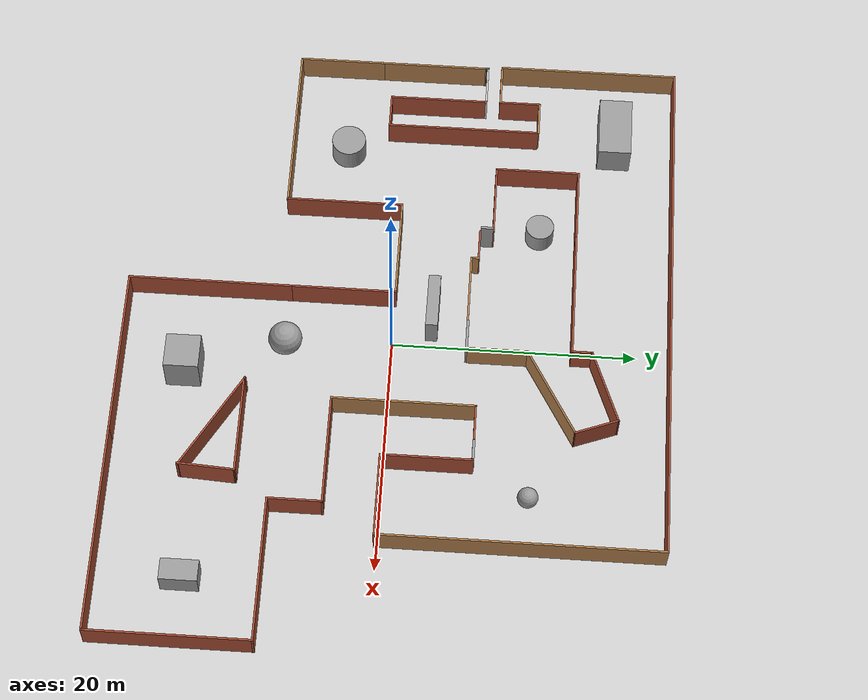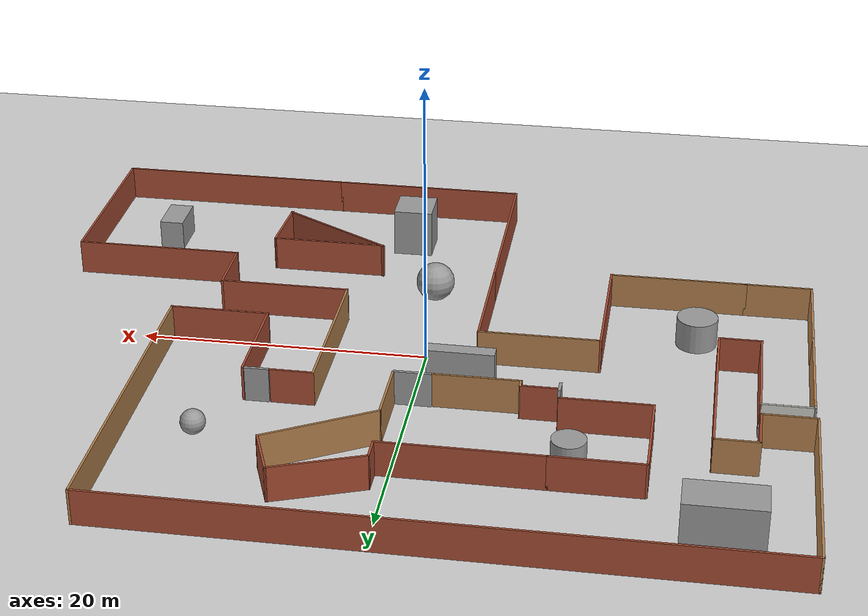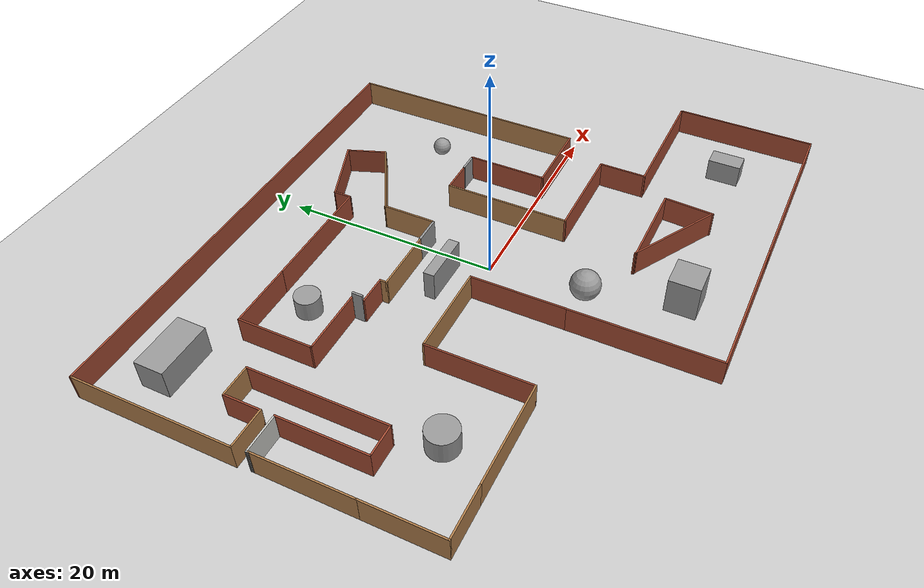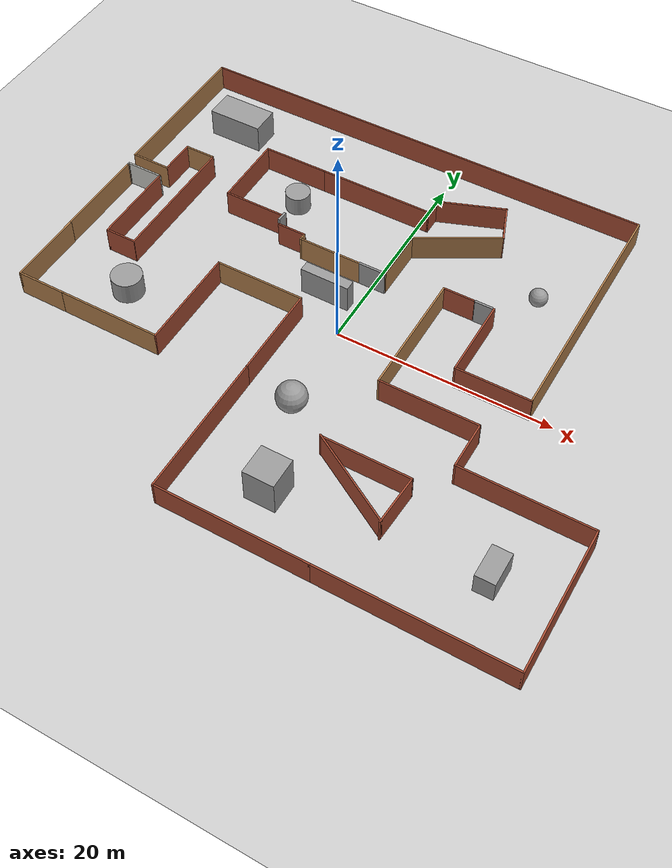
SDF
<sdf version="1.7">
 <world name="default">
  <light name="sun" type="directional">
   <pose>0 0 10 0 -0 0</pose>
   <diffuse>0.8 0.8 0.8 1</diffuse>
   <specular>0.2 0.2 0.2 1</specular>
   <attenuation>
    <range>1000</range>
    <constant>0.9</constant>
    <linear>0.01</linear>
    <quadratic>0.001</quadratic>
   </attenuation>
   <direction>-0.5 0.1 -0.9</direction>
   <spot><inner_angle>0</inner_angle><outer_angle>0</outer_angle><falloff>0</falloff></spot>
  </light>
  <model name="ground_plane">
   <static>1</static>
   <link name="link">
    <collision name="collision">
     <geometry><plane><normal>0 0 1</normal><size>100 100</size></plane></geometry>
     <surface>
      <contact><collide_bitmask>65535</collide_bitmask></contact>
      <friction><ode><mu>100</mu><mu2>50</mu2></ode></friction>
     </surface>
    </collision>
    <visual name="visual">
     <cast_shadows>0</cast_shadows>
     <geometry><plane><normal>0 0 1</normal><size>100 100</size></plane></geometry>
     <material>
      <script><uri>file://media/materials/scripts/gazebo.material</uri><name>Gazebo/Grey</name></script>
     </material>
    </visual>
   </link>
  </model>
  <gravity>0 0 -9.8</gravity>
  <magnetic_field>6e-06 2.3e-05 -4.2e-05</magnetic_field>
  <atmosphere type="adiabatic"/>
  <physics type="ode">
   <max_step_size>0.001</max_step_size>
   <real_time_factor>1</real_time_factor>
   <real_time_update_rate>1000</real_time_update_rate>
  </physics>
  <scene><ambient>0.4 0.4 0.4 1</ambient><background>0.7 0.7 0.7 1</background><shadows>1</shadows></scene>
  <spherical_coordinates>
   <surface_model>EARTH_WGS84</surface_model>
   <latitude_deg>0</latitude_deg>
   <longitude_deg>0</longitude_deg>
   <elevation>0</elevation>
   <heading_deg>0</heading_deg>
  </spherical_coordinates>
  <model name="world_Car">
   <pose>0.45584 0.39541 0 0 -0 0</pose>
   <link name="Door_1">
    <collision name="Door_1_Collision">
     <geometry><box><size>1.664 0.2 2.5</size></box></geometry>
     <pose>0 0 1.25 0 -0 0</pose>
    </collision>
    <visual name="Door_1_Visual">
     <pose>0 0 1.25 0 -0 0</pose>
     <geometry><box><size>1.664 0.2 2.5</size></box></geometry>
     <material>
      <script><uri>file://media/materials/scripts/gazebo.material</uri><name>Gazebo/Grey</name></script>
     </material>
    </visual>
    <pose>9.70506 6.77905 0 0 -0 0</pose>
   </link>
   <link name="Door_2">
    <collision name="Door_2_Collision">
     <geometry><box><size>2.582 0.2 2.5</size></box></geometry>
     <pose>0 0 1.25 0 -0 0</pose>
    </collision>
    <visual name="Door_2_Visual">
     <pose>0 0 1.25 0 -0 0</pose>
     <geometry><box><size>2.582 0.2 2.5</size></box></geometry>
     <material>
      <script><uri>file://media/materials/scripts/gazebo.material</uri><name>Gazebo/Grey</name></script>
     </material>
    </visual>
    <pose>-0.559145 5.75033 0 0 -0 0</pose>
   </link>
   <link name="Wall_10">
    <collision name="Wall_10_Collision">
     <geometry><box><size>15 0.15 2.5</size></box></geometry>
     <pose>0 0 1.25 0 -0 0</pose>
    </collision>
    <visual name="Wall_10_Visual">
     <pose>0 0 1.25 0 -0 0</pose>
     <geometry><box><size>15 0.15 2.5</size></box></geometry>
     <material>
      <script><uri>file://media/materials/scripts/gazebo.material</uri><name>Gazebo/Wood</name></script>
      <ambient>1 1 1 1</ambient>
     </material>
     <meta><layer>0</layer></meta>
    </visual>
    <pose>-26.8438 14.8473 0 0 -0 -1.5708</pose>
   </link>
   <link name="Wall_101">
    <collision name="Wall_101_Collision">
     <geometry><box><size>8.25 0.15 2.5</size></box></geometry>
     <pose>0 0 1.25 0 -0 0</pose>
    </collision>
    <visual name="Wall_101_Visual">
     <pose>0 0 1.25 0 -0 0</pose>
     <geometry><box><size>8.25 0.15 2.5</size></box></geometry>
     <material>
      <script><uri>file://media/materials/scripts/gazebo.material</uri><name>Gazebo/Wood</name></script>
      <ambient>1 1 1 1</ambient>
     </material>
     <meta><layer>0</layer></meta>
    </visual>
    <pose>4.23205 12.7345 0 0 -0 -2.61799</pose>
   </link>
   <link name="Wall_103">
    <collision name="Wall_103_Collision">
     <geometry><box><size>5 0.15 2.5</size></box></geometry>
     <pose>0 0 1.25 0 -0 0</pose>
    </collision>
    <visual name="Wall_103_Visual">
     <pose>0 0 1.25 0 -0 0</pose>
     <geometry><box><size>5 0.15 2.5</size></box></geometry>
     <material>
      <script><uri>file://media/materials/scripts/gazebo.material</uri><name>Gazebo/Wood</name></script>
      <ambient>1 1 1 1</ambient>
     </material>
     <meta><layer>0</layer></meta>
    </visual>
    <pose>0.724642 8.28455 0 0 -0 -1.5708</pose>
   </link>
   <link name="Wall_105">
    <collision name="Wall_105_Collision">
     <geometry><box><size>6 0.15 2.5</size></box></geometry>
     <pose>0 0 1.25 0 -0 0</pose>
    </collision>
    <visual name="Wall_105_Visual">
     <pose>0 0 1.25 0 -0 0</pose>
     <geometry><box><size>6 0.15 2.5</size></box></geometry>
     <material>
      <script><uri>file://media/materials/scripts/gazebo.material</uri><name>Gazebo/Wood</name></script>
      <ambient>1 1 1 1</ambient>
     </material>
     <meta><layer>0</layer></meta>
    </visual>
    <pose>-4.8152 5.7206 0 0 -0 3.14159</pose>
   </link>
   <link name="Wall_106">
    <collision name="Wall_106_Collision">
     <geometry><box><size>0.75 0.15 2.5</size></box></geometry>
     <pose>0 0 1.25 0 -0 0</pose>
    </collision>
    <visual name="Wall_106_Visual">
     <pose>0 0 1.25 0 -0 0</pose>
     <geometry><box><size>0.75 0.15 2.5</size></box></geometry>
     <material>
      <script><uri>file://media/materials/scripts/gazebo.material</uri><name>Gazebo/Wood</name></script>
      <ambient>1 1 1 1</ambient>
     </material>
     <meta><layer>0</layer></meta>
    </visual>
    <pose>-7.7402 6.0206 0 0 -0 1.5708</pose>
   </link>
   <link name="Wall_107">
    <collision name="Wall_107_Collision">
     <geometry><box><size>2.76255 0.15 2.5</size></box></geometry>
     <pose>0 0 1.25 0 -0 0</pose>
    </collision>
    <visual name="Wall_107_Visual">
     <pose>0 0 1.25 0 -0 0</pose>
     <geometry><box><size>2.76255 0.15 2.5</size></box></geometry>
     <material>
      <script><uri>file://media/materials/scripts/gazebo.material</uri><name>Gazebo/Bricks</name></script>
      <ambient>1 1 1 1</ambient>
     </material>
     <meta><layer>0</layer></meta>
    </visual>
    <pose>-9.04647 6.32244 0 0 -0 3.14019</pose>
   </link>
   <link name="Wall_113">
    <collision name="Wall_113_Collision">
     <geometry><box><size>6.25 0.15 2.5</size></box></geometry>
     <pose>0 0 1.25 0 -0 0</pose>
    </collision>
    <visual name="Wall_113_Visual">
     <pose>0 0 1.25 0 -0 0</pose>
     <geometry><box><size>6.25 0.15 2.5</size></box></geometry>
     <material>
      <script><uri>file://media/materials/scripts/gazebo.material</uri><name>Gazebo/Bricks</name></script>
      <ambient>1 1 1 1</ambient>
     </material>
     <meta><layer>0</layer></meta>
    </visual>
    <pose>-13.4438 7.42225 0 0 -0 0</pose>
   </link>
   <link name="Wall_116">
    <collision name="Wall_116_Collision">
     <geometry><box><size>3.75 0.15 2.5</size></box></geometry>
     <pose>0 0 1.25 0 -0 0</pose>
    </collision>
    <visual name="Wall_116_Visual">
     <pose>0 0 1.25 0 -0 0</pose>
     <geometry><box><size>3.75 0.15 2.5</size></box></geometry>
     <material>
      <script><uri>file://media/materials/scripts/gazebo.material</uri><name>Gazebo/Wood</name></script>
      <ambient>1 1 1 1</ambient>
     </material>
     <meta><layer>0</layer></meta>
    </visual>
    <pose>-25.0438 7.42225 0 0 -0 0</pose>
   </link>
   <link name="Wall_117">
    <collision name="Wall_117_Collision">
     <geometry><box><size>3.5 0.15 2.5</size></box></geometry>
     <pose>0 0 1.25 0 -0 0</pose>
    </collision>
    <visual name="Wall_117_Visual">
     <pose>0 0 1.25 0 -0 0</pose>
     <geometry><box><size>3.5 0.15 2.5</size></box></geometry>
     <material>
      <script><uri>file://media/materials/scripts/gazebo.material</uri><name>Gazebo/Bricks</name></script>
      <ambient>1 1 1 1</ambient>
     </material>
     <meta><layer>0</layer></meta>
    </visual>
    <pose>-23.2438 9.09725 0 0 -0 1.5708</pose>
   </link>
   <link name="Wall_118">
    <collision name="Wall_118_Collision">
     <geometry><box><size>3 0.15 2.5</size></box></geometry>
     <pose>0 0 1.25 0 -0 0</pose>
    </collision>
    <visual name="Wall_118_Visual">
     <pose>0 0 1.25 0 -0 0</pose>
     <geometry><box><size>3 0.15 2.5</size></box></geometry>
     <material>
      <script><uri>file://media/materials/scripts/gazebo.material</uri><name>Gazebo/Wood</name></script>
      <ambient>1 1 1 1</ambient>
     </material>
     <meta><layer>0</layer></meta>
    </visual>
    <pose>-21.8188 10.7723 0 0 -0 0</pose>
   </link>
   <link name="Wall_12">
    <collision name="Wall_12_Collision">
     <geometry><box><size>7.04626 0.15 2.5</size></box></geometry>
     <pose>0 0 1.25 0 -0 0</pose>
    </collision>
    <visual name="Wall_12_Visual">
     <pose>0 0 1.25 0 -0 0</pose>
     <geometry><box><size>7.04626 0.15 2.5</size></box></geometry>
     <material>
      <script><uri>file://media/materials/scripts/gazebo.material</uri><name>Gazebo/Bricks</name></script>
      <ambient>1 1 1 1</ambient>
     </material>
     <meta><layer>0</layer></meta>
    </visual>
    <pose>-16.4938 10.8704 0 0 -0 1.5708</pose>
   </link>
   <link name="Wall_123">
    <collision name="Wall_123_Collision">
     <geometry><box><size>3.6035 0.15 2.5</size></box></geometry>
     <pose>0 0 1.25 0 -0 0</pose>
    </collision>
    <visual name="Wall_123_Visual">
     <pose>0 0 1.25 0 -0 0</pose>
     <geometry><box><size>3.6035 0.15 2.5</size></box></geometry>
     <material>
      <script><uri>file://media/materials/scripts/gazebo.material</uri><name>Gazebo/CeilingTiled</name></script>
      <ambient>1 1 1 1</ambient>
     </material>
     <meta><layer>0</layer></meta>
    </visual>
    <pose>-24.9424 6.19868 0 0 -0 3.14159</pose>
   </link>
   <link name="Wall_124">
    <collision name="Wall_124_Collision">
     <geometry><box><size>0.321428 0.15 2.5</size></box></geometry>
     <pose>0 0 1.25 0 -0 0</pose>
    </collision>
    <visual name="Wall_124_Visual">
     <pose>0 0 1.25 0 -0 0</pose>
     <geometry><box><size>0.321428 0.15 2.5</size></box></geometry>
     <material>
      <script><uri>file://media/materials/scripts/gazebo.material</uri><name>Gazebo/Grey</name></script>
      <ambient>1 1 1 1</ambient>
     </material>
     <meta><layer>0</layer></meta>
    </visual>
    <pose>-26.6627 6.11322 0 0 -0 -1.49508</pose>
   </link>
   <link name="Wall_125">
    <collision name="Wall_125_Collision">
     <geometry><box><size>0.15 0.15 2.5</size></box></geometry>
     <pose>0 0 1.25 0 -0 0</pose>
    </collision>
    <visual name="Wall_125_Visual">
     <pose>0 0 1.25 0 -0 0</pose>
     <geometry><box><size>0.15 0.15 2.5</size></box></geometry>
     <material>
      <script><uri>file://media/materials/scripts/gazebo.material</uri><name>Gazebo/Grey</name></script>
      <ambient>1 1 1 1</ambient>
     </material>
     <meta><layer>0</layer></meta>
    </visual>
    <pose>-26.6562 6.02775 0 0 -0 0</pose>
   </link>
   <link name="Wall_127">
    <collision name="Wall_127_Collision">
     <geometry><box><size>8.25 0.15 2.5</size></box></geometry>
     <pose>0 0 1.25 0 -0 0</pose>
    </collision>
    <visual name="Wall_127_Visual">
     <pose>0 0 1.25 0 -0 0</pose>
     <geometry><box><size>8.25 0.15 2.5</size></box></geometry>
     <material>
      <script><uri>file://media/materials/scripts/gazebo.material</uri><name>Gazebo/Bricks</name></script>
      <ambient>1 1 1 1</ambient>
     </material>
     <meta><layer>0</layer></meta>
    </visual>
    <pose>-23.2157 2.14868 0 0 -0 -1.5708</pose>
   </link>
   <link name="Wall_128">
    <collision name="Wall_128_Collision">
     <geometry><box><size>2.967 0.15 2.5</size></box></geometry>
     <pose>0 0 1.25 0 -0 0</pose>
    </collision>
    <visual name="Wall_128_Visual">
     <pose>0 0 1.25 0 -0 0</pose>
     <geometry><box><size>2.967 0.15 2.5</size></box></geometry>
     <material>
      <script><uri>file://media/materials/scripts/gazebo.material</uri><name>Gazebo/Bricks</name></script>
      <ambient>1 1 1 1</ambient>
     </material>
     <meta><layer>0</layer></meta>
    </visual>
    <pose>-21.8072 -1.90132 0 0 -0 0</pose>
   </link>
   <link name="Wall_129">
    <collision name="Wall_129_Collision">
     <geometry><box><size>12.75 0.15 2.5</size></box></geometry>
     <pose>0 0 1.25 0 -0 0</pose>
    </collision>
    <visual name="Wall_129_Visual">
     <pose>0 0 1.25 0 -0 0</pose>
     <geometry><box><size>12.75 0.15 2.5</size></box></geometry>
     <material>
      <script><uri>file://media/materials/scripts/gazebo.material</uri><name>Gazebo/Bricks</name></script>
      <ambient>1 1 1 1</ambient>
     </material>
     <meta><layer>0</layer></meta>
    </visual>
    <pose>-20.3531 4.39868 0 0 -0 1.5708</pose>
   </link>
   <link name="Wall_13">
    <collision name="Wall_13_Collision">
     <geometry><box><size>6.25 0.15 2.5</size></box></geometry>
     <pose>0 0 1.25 0 -0 0</pose>
    </collision>
    <visual name="Wall_13_Visual">
     <pose>0 0 1.25 0 -0 0</pose>
     <geometry><box><size>6.25 0.15 2.5</size></box></geometry>
     <material>
      <script><uri>file://media/materials/scripts/gazebo.material</uri><name>Gazebo/Bricks</name></script>
      <ambient>1 1 1 1</ambient>
     </material>
     <meta><layer>0</layer></meta>
    </visual>
    <pose>-13.4207 14.3185 0 0 -0 0</pose>
   </link>
   <link name="Wall_5">
    <collision name="Wall_5_Collision">
     <geometry><box><size>44.5 0.15 2.5</size></box></geometry>
     <pose>0 0 1.25 0 -0 0</pose>
    </collision>
    <visual name="Wall_5_Visual">
     <pose>0 0 1.25 0 -0 0</pose>
     <geometry><box><size>44.5 0.15 2.5</size></box></geometry>
     <material>
      <script><uri>file://media/materials/scripts/gazebo.material</uri><name>Gazebo/Bricks</name></script>
      <ambient>1 1 1 1</ambient>
     </material>
     <meta><layer>0</layer></meta>
    </visual>
    <pose>-4.66878 22.2723 0 0 -0 0</pose>
   </link>
   <link name="Wall_6">
    <collision name="Wall_6_Collision">
     <geometry><box><size>23 0.15 2.5</size></box></geometry>
     <pose>0 0 1.25 0 -0 0</pose>
    </collision>
    <visual name="Wall_6_Visual">
     <pose>0 0 1.25 0 -0 0</pose>
     <geometry><box><size>23 0.15 2.5</size></box></geometry>
     <material>
      <script><uri>file://media/materials/scripts/gazebo.material</uri><name>Gazebo/Wood</name></script>
      <ambient>1 1 1 1</ambient>
     </material>
     <meta><layer>0</layer></meta>
    </visual>
    <pose>17.5062 10.8473 0 0 -0 -1.5708</pose>
   </link>
   <link name="Wall_7">
    <collision name="Wall_7_Collision">
     <geometry><box><size>7 0.15 2.5</size></box></geometry>
     <pose>0 0 1.25 0 -0 0</pose>
    </collision>
    <visual name="Wall_7_Visual">
     <pose>0 0 1.25 0 -0 0</pose>
     <geometry><box><size>7 0.15 2.5</size></box></geometry>
     <material>
      <script><uri>file://media/materials/scripts/gazebo.material</uri><name>Gazebo/Bricks</name></script>
      <ambient>1 1 1 1</ambient>
     </material>
     <meta><layer>0</layer></meta>
    </visual>
    <pose>14.0812 -0.577745 0 0 -0 3.14159</pose>
   </link>
   <link name="Wall_71">
    <collision name="Wall_71_Collision">
     <geometry><box><size>9 0.15 2.5</size></box></geometry>
     <pose>0 0 1.25 0 -0 0</pose>
    </collision>
    <visual name="Wall_71_Visual">
     <pose>0 0 1.25 0 -0 0</pose>
     <geometry><box><size>9 0.15 2.5</size></box></geometry>
     <material>
      <script><uri>file://media/materials/scripts/gazebo.material</uri><name>Gazebo/Wood</name></script>
      <ambient>1 1 1 1</ambient>
     </material>
     <meta><layer>0</layer></meta>
    </visual>
    <pose>-26.6562 1.60275 0 0 -0 -1.5708</pose>
   </link>
   <link name="Wall_72">
    <collision name="Wall_72_Collision">
     <geometry><box><size>7.25 0.15 2.5</size></box></geometry>
     <pose>0 0 1.25 0 -0 0</pose>
    </collision>
    <visual name="Wall_72_Visual">
     <pose>0 0 1.25 0 -0 0</pose>
     <geometry><box><size>7.25 0.15 2.5</size></box></geometry>
     <material>
      <script><uri>file://media/materials/scripts/gazebo.material</uri><name>Gazebo/Wood</name></script>
      <ambient>1 1 1 1</ambient>
     </material>
     <meta><layer>0</layer></meta>
    </visual>
    <pose>-26.6562 -6.37225 0 0 -0 -1.5708</pose>
   </link>
   <link name="Wall_73">
    <collision name="Wall_73_Collision">
     <geometry><box><size>4.75 0.15 2.5</size></box></geometry>
     <pose>0 0 1.25 0 -0 0</pose>
    </collision>
    <visual name="Wall_73_Visual">
     <pose>0 0 1.25 0 -0 0</pose>
     <geometry><box><size>4.75 0.15 2.5</size></box></geometry>
     <material>
      <script><uri>file://media/materials/scripts/gazebo.material</uri><name>Gazebo/Wood</name></script>
      <ambient>1 1 1 1</ambient>
     </material>
     <meta><layer>0</layer></meta>
    </visual>
    <pose>-24.3562 -9.92225 0 0 -0 0</pose>
   </link>
   <link name="Wall_74">
    <collision name="Wall_74_Collision">
     <geometry><box><size>9.75 0.15 2.5</size></box></geometry>
     <pose>0 0 1.25 0 -0 0</pose>
    </collision>
    <visual name="Wall_74_Visual">
     <pose>0 0 1.25 0 -0 0</pose>
     <geometry><box><size>9.75 0.15 2.5</size></box></geometry>
     <material>
      <script><uri>file://media/materials/scripts/gazebo.material</uri><name>Gazebo/Wood</name></script>
      <ambient>1 1 1 1</ambient>
     </material>
     <meta><layer>0</layer></meta>
    </visual>
    <pose>-17.2562 -9.92225 0 0 -0 0</pose>
   </link>
   <link name="Wall_75">
    <collision name="Wall_75_Collision">
     <geometry><box><size>9.75 0.15 2.5</size></box></geometry>
     <pose>0 0 1.25 0 -0 0</pose>
    </collision>
    <visual name="Wall_75_Visual">
     <pose>0 0 1.25 0 -0 0</pose>
     <geometry><box><size>9.75 0.15 2.5</size></box></geometry>
     <material>
      <script><uri>file://media/materials/scripts/gazebo.material</uri><name>Gazebo/Bricks</name></script>
      <ambient>1 1 1 1</ambient>
     </material>
     <meta><layer>0</layer></meta>
    </visual>
    <pose>-12.4562 -5.12225 0 0 -0 1.5708</pose>
   </link>
   <link name="Wall_76">
    <collision name="Wall_76_Collision">
     <geometry><box><size>8.5 0.15 2.5</size></box></geometry>
     <pose>0 0 1.25 0 -0 0</pose>
    </collision>
    <visual name="Wall_76_Visual">
     <pose>0 0 1.25 0 -0 0</pose>
     <geometry><box><size>8.5 0.15 2.5</size></box></geometry>
     <material>
      <script><uri>file://media/materials/scripts/gazebo.material</uri><name>Gazebo/Wood</name></script>
      <ambient>1 1 1 1</ambient>
     </material>
     <meta><layer>0</layer></meta>
    </visual>
    <pose>-8.28122 -0.322253 0 0 -0 0</pose>
   </link>
   <link name="Wall_77">
    <collision name="Wall_77_Collision">
     <geometry><box><size>8.75 0.15 2.5</size></box></geometry>
     <pose>0 0 1.25 0 -0 0</pose>
    </collision>
    <visual name="Wall_77_Visual">
     <pose>0 0 1.25 0 -0 0</pose>
     <geometry><box><size>8.75 0.15 2.5</size></box></geometry>
     <material>
      <script><uri>file://media/materials/scripts/gazebo.material</uri><name>Gazebo/Bricks</name></script>
      <ambient>1 1 1 1</ambient>
     </material>
     <meta><layer>0</layer></meta>
    </visual>
    <pose>-4.10622 -4.62225 0 0 -0 -1.5708</pose>
   </link>
   <link name="Wall_78">
    <collision name="Wall_78_Collision">
     <geometry><box><size>13.5 0.15 2.5</size></box></geometry>
     <pose>0 0 1.25 0 -0 0</pose>
    </collision>
    <visual name="Wall_78_Visual">
     <pose>0 0 1.25 0 -0 0</pose>
     <geometry><box><size>13.5 0.15 2.5</size></box></geometry>
     <material>
      <script><uri>file://media/materials/scripts/gazebo.material</uri><name>Gazebo/Bricks</name></script>
      <ambient>1 1 1 1</ambient>
     </material>
     <meta><layer>0</layer></meta>
    </visual>
    <pose>-4.10622 -15.5973 0 0 -0 -1.5708</pose>
   </link>
   <link name="Wall_79">
    <collision name="Wall_79_Collision">
     <geometry><box><size>14 0.15 2.5</size></box></geometry>
     <pose>0 0 1.25 0 -0 0</pose>
    </collision>
    <visual name="Wall_79_Visual">
     <pose>0 0 1.25 0 -0 0</pose>
     <geometry><box><size>14 0.15 2.5</size></box></geometry>
     <material>
      <script><uri>file://media/materials/scripts/gazebo.material</uri><name>Gazebo/Bricks</name></script>
      <ambient>1 1 1 1</ambient>
     </material>
     <meta><layer>0</layer></meta>
    </visual>
    <pose>2.81878 -22.2723 0 0 -0 0</pose>
   </link>
   <link name="Wall_8">
    <collision name="Wall_8_Collision">
     <geometry><box><size>7.5 0.15 2.5</size></box></geometry>
     <pose>0 0 1.25 0 -0 0</pose>
    </collision>
    <visual name="Wall_8_Visual">
     <pose>0 0 1.25 0 -0 0</pose>
     <geometry><box><size>7.5 0.15 2.5</size></box></geometry>
     <material>
      <script><uri>file://media/materials/scripts/gazebo.material</uri><name>Gazebo/Bricks</name></script>
      <ambient>1 1 1 1</ambient>
     </material>
     <meta><layer>0</layer></meta>
    </visual>
    <pose>10.6562 3.09725 0 0 -0 1.5708</pose>
   </link>
   <link name="Wall_80">
    <collision name="Wall_80_Collision">
     <geometry><box><size>17.25 0.15 2.5</size></box></geometry>
     <pose>0 0 1.25 0 -0 0</pose>
    </collision>
    <visual name="Wall_80_Visual">
     <pose>0 0 1.25 0 -0 0</pose>
     <geometry><box><size>17.25 0.15 2.5</size></box></geometry>
     <material>
      <script><uri>file://media/materials/scripts/gazebo.material</uri><name>Gazebo/Bricks</name></script>
      <ambient>1 1 1 1</ambient>
     </material>
     <meta><layer>0</layer></meta>
    </visual>
    <pose>18.2938 -22.2723 0 0 -0 0</pose>
   </link>
   <link name="Wall_81">
    <collision name="Wall_81_Collision">
     <geometry><box><size>13.25 0.15 2.5</size></box></geometry>
     <pose>0 0 1.25 0 -0 0</pose>
    </collision>
    <visual name="Wall_81_Visual">
     <pose>0 0 1.25 0 -0 0</pose>
     <geometry><box><size>13.25 0.15 2.5</size></box></geometry>
     <material>
      <script><uri>file://media/materials/scripts/gazebo.material</uri><name>Gazebo/Bricks</name></script>
      <ambient>1 1 1 1</ambient>
     </material>
     <meta><layer>0</layer></meta>
    </visual>
    <pose>26.8438 -15.7223 0 0 -0 1.5708</pose>
   </link>
   <link name="Wall_82">
    <collision name="Wall_82_Collision">
     <geometry><box><size>12 0.15 2.5</size></box></geometry>
     <pose>0 0 1.25 0 -0 0</pose>
    </collision>
    <visual name="Wall_82_Visual">
     <pose>0 0 1.25 0 -0 0</pose>
     <geometry><box><size>12 0.15 2.5</size></box></geometry>
     <material>
      <script><uri>file://media/materials/scripts/gazebo.material</uri><name>Gazebo/Bricks</name></script>
      <ambient>1 1 1 1</ambient>
     </material>
     <meta><layer>0</layer></meta>
    </visual>
    <pose>20.9188 -9.17225 0 0 -0 3.14159</pose>
   </link>
   <link name="Wall_83">
    <collision name="Wall_83_Collision">
     <geometry><box><size>4.5 0.15 2.5</size></box></geometry>
     <pose>0 0 1.25 0 -0 0</pose>
    </collision>
    <visual name="Wall_83_Visual">
     <pose>0 0 1.25 0 -0 0</pose>
     <geometry><box><size>4.5 0.15 2.5</size></box></geometry>
     <material>
      <script><uri>file://media/materials/scripts/gazebo.material</uri><name>Gazebo/Bricks</name></script>
      <ambient>1 1 1 1</ambient>
     </material>
     <meta><layer>0</layer></meta>
    </visual>
    <pose>14.9938 -6.99725 0 0 -0 1.5708</pose>
   </link>
   <link name="Wall_84">
    <collision name="Wall_84_Collision">
     <geometry><box><size>9.25 0.15 2.5</size></box></geometry>
     <pose>0 0 1.25 0 -0 0</pose>
    </collision>
    <visual name="Wall_84_Visual">
     <pose>0 0 1.25 0 -0 0</pose>
     <geometry><box><size>9.25 0.15 2.5</size></box></geometry>
     <material>
      <script><uri>file://media/materials/scripts/gazebo.material</uri><name>Gazebo/Bricks</name></script>
      <ambient>1 1 1 1</ambient>
     </material>
     <meta><layer>0</layer></meta>
    </visual>
    <pose>10.4438 -4.82225 0 0 -0 3.14159</pose>
   </link>
   <link name="Wall_85">
    <collision name="Wall_85_Collision">
     <geometry><box><size>11.75 0.15 2.5</size></box></geometry>
     <pose>0 0 1.25 0 -0 0</pose>
    </collision>
    <visual name="Wall_85_Visual">
     <pose>0 0 1.25 0 -0 0</pose>
     <geometry><box><size>11.75 0.15 2.5</size></box></geometry>
     <material>
      <script><uri>file://media/materials/scripts/gazebo.material</uri><name>Gazebo/Wood</name></script>
      <ambient>1 1 1 1</ambient>
     </material>
     <meta><layer>0</layer></meta>
    </visual>
    <pose>5.89378 0.977747 0 0 -0 1.5708</pose>
   </link>
   <link name="Wall_86">
    <collision name="Wall_86_Collision">
     <geometry><box><size>3 0.15 2.5</size></box></geometry>
     <pose>0 0 1.25 0 -0 0</pose>
    </collision>
    <visual name="Wall_86_Visual">
     <pose>0 0 1.25 0 -0 0</pose>
     <geometry><box><size>3 0.15 2.5</size></box></geometry>
     <material>
      <script><uri>file://media/materials/scripts/gazebo.material</uri><name>Gazebo/Bricks</name></script>
      <ambient>0.921569 0.807843 0.615686 1</ambient>
     </material>
     <meta><layer>0</layer></meta>
    </visual>
    <pose>7.31878 6.77775 0 0 -0 0</pose>
   </link>
   <link name="Wall_88">
    <collision name="Wall_88_Collision">
     <geometry><box><size>11 0.15 2.5</size></box></geometry>
     <pose>0 0 1.25 0 -0 0</pose>
    </collision>
    <visual name="Wall_88_Visual">
     <pose>0 0 1.25 0 -0 0</pose>
     <geometry><box><size>11 0.15 2.5</size></box></geometry>
     <material>
      <script><uri>file://media/materials/scripts/gazebo.material</uri><name>Gazebo/Bricks</name></script>
      <ambient>1 1 1 1</ambient>
     </material>
     <meta><layer>0</layer></meta>
    </visual>
    <pose>-4.94565 14.3185 0 0 -0 0</pose>
   </link>
   <link name="Wall_89">
    <collision name="Wall_89_Collision">
     <geometry><box><size>1.75 0.15 2.5</size></box></geometry>
     <pose>0 0 1.25 0 -0 0</pose>
    </collision>
    <visual name="Wall_89_Visual">
     <pose>0 0 1.25 0 -0 0</pose>
     <geometry><box><size>1.75 0.15 2.5</size></box></geometry>
     <material>
      <script><uri>file://media/materials/scripts/gazebo.material</uri><name>Gazebo/Bricks</name></script>
      <ambient>1 1 1 1</ambient>
     </material>
     <meta><layer>0</layer></meta>
    </visual>
    <pose>0.479351 15.1185 0 0 -0 1.5708</pose>
   </link>
   <link name="Wall_90">
    <collision name="Wall_90_Collision">
     <geometry><box><size>6.53309 0.15 2.5</size></box></geometry>
     <pose>0 0 1.25 0 -0 0</pose>
    </collision>
    <visual name="Wall_90_Visual">
     <pose>0 0 1.25 0 -0 0</pose>
     <geometry><box><size>6.53309 0.15 2.5</size></box></geometry>
     <material>
      <script><uri>file://media/materials/scripts/gazebo.material</uri><name>Gazebo/Bricks</name></script>
      <ambient>1 1 1 1</ambient>
     </material>
     <meta><layer>0</layer></meta>
    </visual>
    <pose>3.46336 17.0506 0 0 -0 0.362617</pose>
   </link>
   <link name="Wall_93">
    <collision name="Wall_93_Collision">
     <geometry><box><size>3.80893 0.15 2.5</size></box></geometry>
     <pose>0 0 1.25 0 -0 0</pose>
    </collision>
    <visual name="Wall_93_Visual">
     <pose>0 0 1.25 0 -0 0</pose>
     <geometry><box><size>3.80893 0.15 2.5</size></box></geometry>
     <material>
      <script><uri>file://media/materials/scripts/gazebo.material</uri><name>Gazebo/Bricks</name></script>
      <ambient>1 1 1 1</ambient>
     </material>
     <meta><layer>0</layer></meta>
    </visual>
    <pose>7.0934 16.4711 0 0 -0 -1.20988</pose>
   </link>
   <link name="Wall_97">
    <collision name="Wall_97_Collision">
     <geometry><box><size>9.25 0.15 2.5</size></box></geometry>
     <pose>0 0 1.25 0 -0 0</pose>
    </collision>
    <visual name="Wall_97_Visual">
     <pose>0 0 1.25 0 -0 0</pose>
     <geometry><box><size>9.25 0.15 2.5</size></box></geometry>
     <material>
      <script><uri>file://media/materials/scripts/gazebo.material</uri><name>Gazebo/Bricks</name></script>
      <ambient>1 1 1 1</ambient>
     </material>
     <meta><layer>0</layer></meta>
    </visual>
    <pose>8.51488 -14.1524 0 0 -0 -0.523599</pose>
   </link>
   <link name="Wall_98">
    <collision name="Wall_98_Collision">
     <geometry><box><size>4.72789 0.15 2.5</size></box></geometry>
     <pose>0 0 1.25 0 -0 0</pose>
    </collision>
    <visual name="Wall_98_Visual">
     <pose>0 0 1.25 0 -0 0</pose>
     <geometry><box><size>4.72789 0.15 2.5</size></box></geometry>
     <material>
      <script><uri>file://media/materials/scripts/gazebo.material</uri><name>Gazebo/Bricks</name></script>
      <ambient>1 1 1 1</ambient>
     </material>
     <meta><layer>0</layer></meta>
    </visual>
    <pose>12.5957 -14.2364 0 0 -0 1.50944</pose>
   </link>
   <link name="Wall_99">
    <collision name="Wall_99_Collision">
     <geometry><box><size>8.25 0.15 2.5</size></box></geometry>
     <pose>0 0 1.25 0 -0 0</pose>
    </collision>
    <visual name="Wall_99_Visual">
     <pose>0 0 1.25 0 -0 0</pose>
     <geometry><box><size>8.25 0.15 2.5</size></box></geometry>
     <material>
      <script><uri>file://media/materials/scripts/gazebo.material</uri><name>Gazebo/Bricks</name></script>
      <ambient>1 1 1 1</ambient>
     </material>
     <meta><layer>0</layer></meta>
    </visual>
    <pose>8.68603 -11.9518 0 0 -0 3.14159</pose>
   </link>
   <link name="Window_4">
    <collision name="Window_4_Collision">
     <geometry><box><size>1.01 0.2 3</size></box></geometry>
     <pose>0 0 1.5 0 -0 0</pose>
    </collision>
    <visual name="Window_4_Visual">
     <pose>0 0 1.5 0 -0 0</pose>
     <geometry><box><size>1.01 0.2 3</size></box></geometry>
     <material>
      <script><uri>file://media/materials/scripts/gazebo.material</uri><name>Gazebo/Grey</name></script>
     </material>
    </visual>
    <pose>-10.3889 6.88398 0 0 -0 -1.58381</pose>
   </link>
   <static>1</static>
  </model>
  <model name="unit_sphere">
   <pose>13.3579 11.6713 0.841865 0 -0 0</pose>
   <link name="link">
    <inertial>
     <mass>1</mass>
     <inertia><ixx>0.1</ixx><ixy>0</ixy><ixz>0</ixz><iyy>0.1</iyy><iyz>0</iyz><izz>0.1</izz></inertia>
    </inertial>
    <collision name="collision"><geometry><sphere><radius>0.841865</radius></sphere></geometry></collision>
    <visual name="visual">
     <geometry><sphere><radius>0.841865</radius></sphere></geometry>
     <material>
      <script><name>Gazebo/Grey</name><uri>file://media/materials/scripts/gazebo.material</uri></script>
     </material>
    </visual>
   </link>
  </model>
  <model name="unit_cylinder">
   <pose>-18.3478 -4.87925 1.05728 0 -0 2e-06</pose>
   <link name="link">
    <inertial>
     <mass>1</mass>
     <inertia><ixx>0.145833</ixx><ixy>0</ixy><ixz>0</ixz><iyy>0.145833</iyy><iyz>0</iyz><izz>0.125</izz></inertia>
    </inertial>
    <collision name="collision">
     <geometry><cylinder><radius>1.42557</radius><length>2.11457</length></cylinder></geometry>
    </collision>
    <visual name="visual">
     <geometry><cylinder><radius>1.42557</radius><length>2.11457</length></cylinder></geometry>
     <material>
      <script><name>Gazebo/Grey</name><uri>file://media/materials/scripts/gazebo.material</uri></script>
     </material>
    </visual>
   </link>
  </model>
  <model name="unit_box">
   <pose>21.7819 -15.0332 1.07891 0 1e-06 -4e-06</pose>
   <link name="link">
    <inertial>
     <mass>1</mass>
     <inertia>
      <ixx>0.166667</ixx>
      <ixy>0</ixy>
      <ixz>0</ixz>
      <iyy>0.166667</iyy>
      <iyz>0</iyz>
      <izz>0.166667</izz>
     </inertia>
    </inertial>
    <collision name="collision"><geometry><box><size>1.74823 3.04137 2.15783</size></box></geometry></collision>
    <visual name="visual">
     <geometry><box><size>1.74823 3.04137 2.15783</size></box></geometry>
     <material>
      <script><name>Gazebo/Grey</name><uri>file://media/materials/scripts/gazebo.material</uri></script>
     </material>
    </visual>
   </link>
  </model>
  <model name="unit_box_0">
   <pose>3.42044 -16.6614 1.75278 0 1e-06 0.002231</pose>
   <link name="link">
    <inertial>
     <mass>1</mass>
     <inertia>
      <ixx>0.166667</ixx>
      <ixy>0</ixy>
      <ixz>0</ixz>
      <iyy>0.166667</iyy>
      <iyz>0</iyz>
      <izz>0.166667</izz>
     </inertia>
    </inertial>
    <collision name="collision"><geometry><box><size>2.84723 2.82988 3.50557</size></box></geometry></collision>
    <visual name="visual">
     <geometry><box><size>2.84723 2.82988 3.50557</size></box></geometry>
     <material>
      <script><name>Gazebo/Grey</name><uri>file://media/materials/scripts/gazebo.material</uri></script>
     </material>
    </visual>
   </link>
  </model>
  <model name="unit_sphere_0">
   <pose>0.662162 -8.66017 1.38068 0 -0 0</pose>
   <link name="link">
    <inertial>
     <mass>1</mass>
     <inertia><ixx>0.1</ixx><ixy>0</ixy><ixz>0</ixz><iyy>0.1</iyy><iyz>0</iyz><izz>0.1</izz></inertia>
    </inertial>
    <collision name="collision"><geometry><sphere><radius>1.38068</radius></sphere></geometry></collision>
    <visual name="visual">
     <geometry><sphere><radius>1.38068</radius></sphere></geometry>
     <material>
      <script><name>Gazebo/Grey</name><uri>file://media/materials/scripts/gazebo.material</uri></script>
     </material>
    </visual>
   </link>
  </model>
  <model name="unit_box_1">
   <pose>-20.7937 17.6862 1.39879 0 0.000324 -0.001085</pose>
   <link name="link">
    <inertial>
     <mass>1</mass>
     <inertia>
      <ixx>0.166667</ixx>
      <ixy>0</ixy>
      <ixz>0</ixz>
      <iyy>0.166667</iyy>
      <iyz>0</iyz>
      <izz>0.166667</izz>
     </inertia>
    </inertial>
    <collision name="collision"><geometry><box><size>5.23911 2.73318 2.79928</size></box></geometry></collision>
    <visual name="visual">
     <geometry><box><size>5.23911 2.73318 2.79928</size></box></geometry>
     <material>
      <script><name>Gazebo/Grey</name><uri>file://media/materials/scripts/gazebo.material</uri></script>
     </material>
    </visual>
   </link>
  </model>
  <model name="unit_cylinder_0">
   <pose>-10.954 11.6757 0.948407 2e-06 -1e-06 -2e-06</pose>
   <link name="link">
    <inertial>
     <mass>1</mass>
     <inertia><ixx>0.145833</ixx><ixy>0</ixy><ixz>0</ixz><iyy>0.145833</iyy><iyz>0</iyz><izz>0.125</izz></inertia>
    </inertial>
    <collision name="collision">
     <geometry><cylinder><radius>1.1616</radius><length>1.89682</length></cylinder></geometry>
    </collision>
    <visual name="visual">
     <geometry><cylinder><radius>1.1616</radius><length>1.89682</length></cylinder></geometry>
     <material>
      <script><name>Gazebo/Grey</name><uri>file://media/materials/scripts/gazebo.material</uri></script>
     </material>
    </visual>
   </link>
  </model>
  <model name="unit_box_2">
   <pose>-2.91307 3.20923 1.39933 2e-06 -0.000158 -0.005941</pose>
   <link name="link">
    <inertial>
     <mass>1</mass>
     <inertia>
      <ixx>0.166667</ixx>
      <ixy>0</ixy>
      <ixz>0</ixz>
      <iyy>0.166667</iyy>
      <iyz>0</iyz>
      <izz>0.166667</izz>
     </inertia>
    </inertial>
    <collision name="collision"><geometry><box><size>4.6377 1 2.79939</size></box></geometry></collision>
    <visual name="visual">
     <geometry><box><size>4.6377 1 2.79939</size></box></geometry>
     <material>
      <script><name>Gazebo/Grey</name><uri>file://media/materials/scripts/gazebo.material</uri></script>
     </material>
    </visual>
   </link>
  </model>
 </world>
</sdf>
